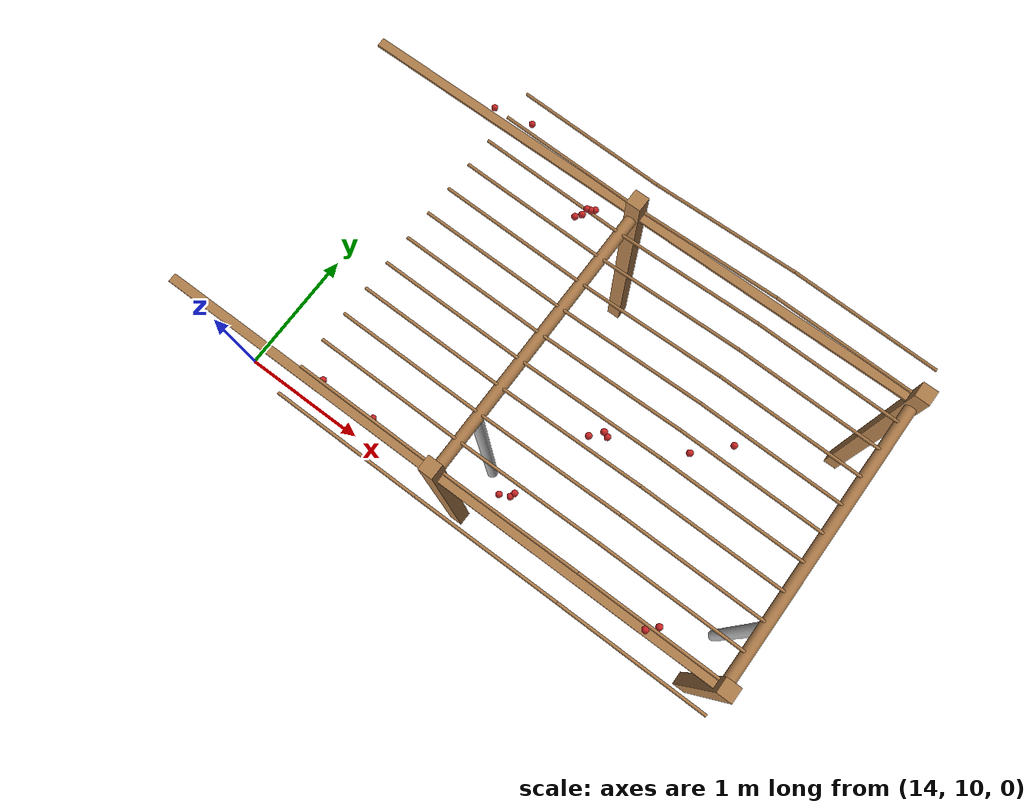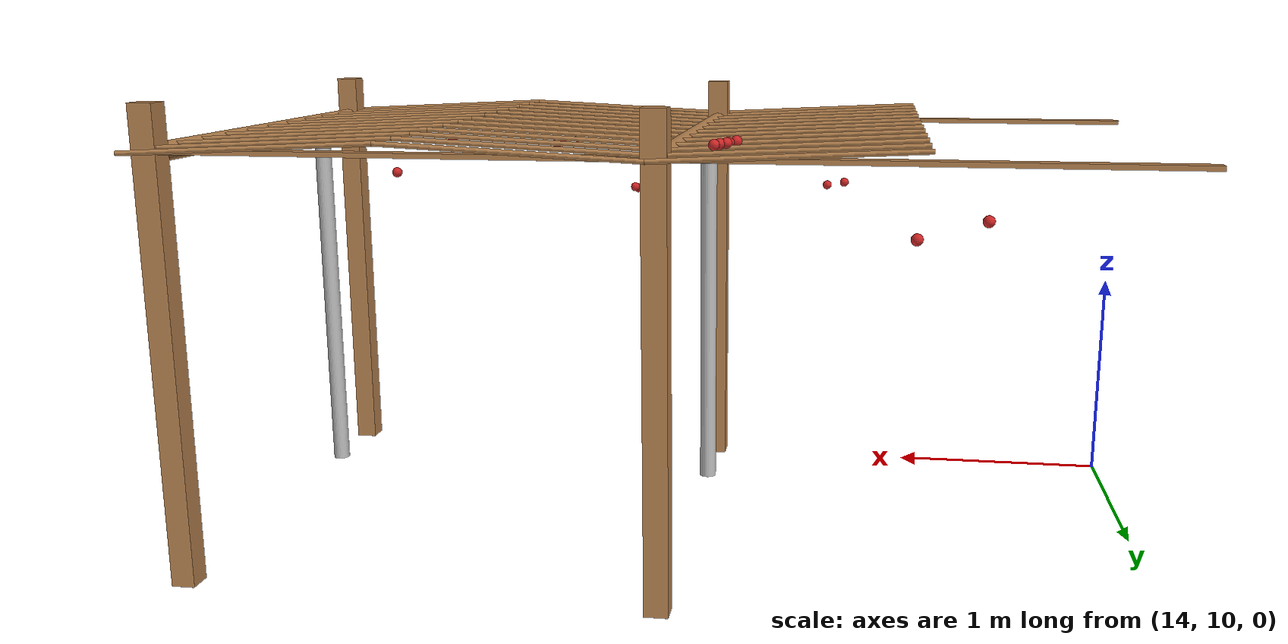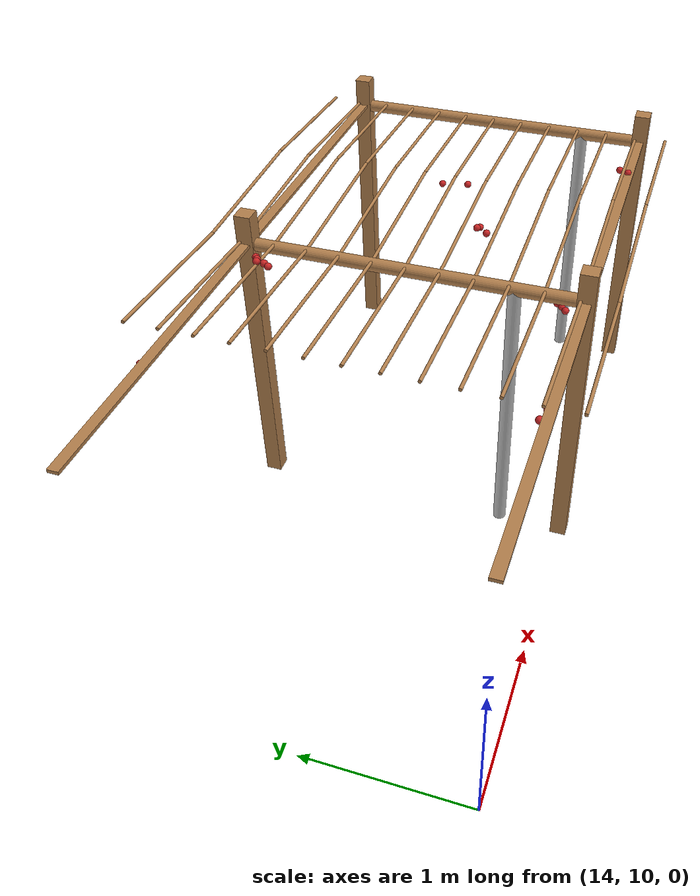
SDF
<sdf version="1.4">
 <model name="pergola">
  <include><name>post_93</name><pose>16.0 10.0 0 0 0 0</pose><uri>model://post</uri></include>
  <include><name>post_94</name><pose>16.0 12.0 0 0 0 0</pose><uri>model://post</uri></include>
  <include><name>post_104</name><pose>18.0 10.0 0 0 0 0</pose><uri>model://post</uri></include>
  <include><name>post_105</name><pose>18.0 12.0 0 0 0 0</pose><uri>model://post</uri></include>
  <link name="beam_82">
   <pose>15.0 10.0 1.81 0 0 0</pose>
   <collision name="collision"><geometry><box><size>2.0 0.06 0.02</size></box></geometry></collision>
   <visual name="visual">
    <geometry><box><size>2.0 0.06 0.02</size></box></geometry>
    <material><script><name>Gazebo/Wood</name></script></material>
   </visual>
   <inertial>
    <mass>5</mass>
    <inertia>
     <ixx>0.0016666666666666668</ixx>
     <ixy>0.0</ixy>
     <ixz>0.0</ixz>
     <iyy>1.6681666666666664</iyy>
     <iyz>0.0</iyz>
     <izz>1.6668333333333332</izz>
    </inertia>
   </inertial>
  </link>
  <link name="beam_83">
   <pose>15.0 12.0 1.81 0 0 0</pose>
   <collision name="collision"><geometry><box><size>2.0 0.06 0.02</size></box></geometry></collision>
   <visual name="visual">
    <geometry><box><size>2.0 0.06 0.02</size></box></geometry>
    <material><script><name>Gazebo/Wood</name></script></material>
   </visual>
   <inertial>
    <mass>5</mass>
    <inertia>
     <ixx>0.0016666666666666668</ixx>
     <ixy>0.0</ixy>
     <ixz>0.0</ixz>
     <iyy>1.6681666666666664</iyy>
     <iyz>0.0</iyz>
     <izz>1.6668333333333332</izz>
    </inertia>
   </inertial>
  </link>
  <link name="beam_93">
   <pose>17.0 10.0 1.81 0 0 0</pose>
   <collision name="collision"><geometry><box><size>2.0 0.06 0.02</size></box></geometry></collision>
   <visual name="visual">
    <geometry><box><size>2.0 0.06 0.02</size></box></geometry>
    <material><script><name>Gazebo/Wood</name></script></material>
   </visual>
   <inertial>
    <mass>5</mass>
    <inertia>
     <ixx>0.0016666666666666668</ixx>
     <ixy>0.0</ixy>
     <ixz>0.0</ixz>
     <iyy>1.6681666666666664</iyy>
     <iyz>0.0</iyz>
     <izz>1.6668333333333332</izz>
    </inertia>
   </inertial>
  </link>
  <link name="beam_94">
   <pose>17.0 12.0 1.81 0 0 0</pose>
   <collision name="collision"><geometry><box><size>2.0 0.06 0.02</size></box></geometry></collision>
   <visual name="visual">
    <geometry><box><size>2.0 0.06 0.02</size></box></geometry>
    <material><script><name>Gazebo/Wood</name></script></material>
   </visual>
   <inertial>
    <mass>5</mass>
    <inertia>
     <ixx>0.0016666666666666668</ixx>
     <ixy>0.0</ixy>
     <ixz>0.0</ixz>
     <iyy>1.6681666666666664</iyy>
     <iyz>0.0</iyz>
     <izz>1.6668333333333332</izz>
    </inertia>
   </inertial>
  </link>
  <include><name>tree_85</name><pose>16.0 10.4 0 0 0 0</pose><uri>model://tree_trunk</uri></include>
  <include><name>tree_95</name><pose>18.0 10.4 0 0 0 0</pose><uri>model://tree_trunk</uri></include>
  <link name="baseBranch_85">
   <pose>16.0 11.0 1.8 1.5707963267948966 0 0</pose>
   <collision name="collision">
    <geometry><cylinder><radius>0.04</radius><length>1.94</length></cylinder></geometry>
   </collision>
   <visual name="visual">
    <geometry><cylinder><radius>0.04</radius><length>1.94</length></cylinder></geometry>
    <material><script><name>Gazebo/WoodFloor</name></script></material>
   </visual>
   <inertial>
    <mass>10</mass>
    <inertia>
     <ixx>3.140333333333333</ixx>
     <ixy>0.0</ixy>
     <ixz>0.0</ixz>
     <iyy>3.140333333333333</iyy>
     <iyz>0.0</iyz>
     <izz>0.008</izz>
    </inertia>
   </inertial>
  </link>
  <link name="baseBranch_95">
   <pose>18.0 11.0 1.8 1.5707963267948966 0 0</pose>
   <collision name="collision">
    <geometry><cylinder><radius>0.04</radius><length>1.94</length></cylinder></geometry>
   </collision>
   <visual name="visual">
    <geometry><cylinder><radius>0.04</radius><length>1.94</length></cylinder></geometry>
    <material><script><name>Gazebo/WoodFloor</name></script></material>
   </visual>
   <inertial>
    <mass>10</mass>
    <inertia>
     <ixx>3.140333333333333</ixx>
     <ixy>0.0</ixy>
     <ixz>0.0</ixz>
     <iyy>3.140333333333333</iyy>
     <iyz>0.0</iyz>
     <izz>0.008</izz>
    </inertia>
   </inertial>
  </link>
  <link name="vine_1499">
   <pose>15.5 9.83 1.85 0 -1.5208379310729538 0</pose>
   <collision name="collision">
    <geometry><cylinder><radius>0.01</radius><length>1.0012492197250393</length></cylinder></geometry>
   </collision>
   <visual name="visual">
    <geometry><cylinder><radius>0.01</radius><length>1.0012492197250393</length></cylinder></geometry>
    <material><script><name>Gazebo/WoodFloor</name></script></material>
   </visual>
   <inertial>
    <mass>5</mass>
    <inertia>
     <ixx>0.41783333333333345</ixx>
     <ixy>0.0</ixy>
     <ixz>0.0</ixz>
     <iyy>0.41783333333333345</iyy>
     <iyz>0.0</iyz>
     <izz>0.00025</izz>
    </inertia>
   </inertial>
  </link>
  <link name="vine_1501">
   <pose>15.5 10.03 1.85 0 -1.5208379310729538 0</pose>
   <collision name="collision">
    <geometry><cylinder><radius>0.01</radius><length>1.0012492197250393</length></cylinder></geometry>
   </collision>
   <visual name="visual">
    <geometry><cylinder><radius>0.01</radius><length>1.0012492197250393</length></cylinder></geometry>
    <material><script><name>Gazebo/WoodFloor</name></script></material>
   </visual>
   <inertial>
    <mass>5</mass>
    <inertia>
     <ixx>0.41783333333333345</ixx>
     <ixy>0.0</ixy>
     <ixz>0.0</ixz>
     <iyy>0.41783333333333345</iyy>
     <iyz>0.0</iyz>
     <izz>0.00025</izz>
    </inertia>
   </inertial>
  </link>
  <link name="vine_1503">
   <pose>15.5 10.23 1.85 0 -1.5208379310729538 0</pose>
   <collision name="collision">
    <geometry><cylinder><radius>0.01</radius><length>1.0012492197250393</length></cylinder></geometry>
   </collision>
   <visual name="visual">
    <geometry><cylinder><radius>0.01</radius><length>1.0012492197250393</length></cylinder></geometry>
    <material><script><name>Gazebo/WoodFloor</name></script></material>
   </visual>
   <inertial>
    <mass>5</mass>
    <inertia>
     <ixx>0.41783333333333345</ixx>
     <ixy>0.0</ixy>
     <ixz>0.0</ixz>
     <iyy>0.41783333333333345</iyy>
     <iyz>0.0</iyz>
     <izz>0.00025</izz>
    </inertia>
   </inertial>
  </link>
  <link name="vine_1505">
   <pose>15.5 10.43 1.85 0 -1.5208379310729538 0</pose>
   <collision name="collision">
    <geometry><cylinder><radius>0.01</radius><length>1.0012492197250393</length></cylinder></geometry>
   </collision>
   <visual name="visual">
    <geometry><cylinder><radius>0.01</radius><length>1.0012492197250393</length></cylinder></geometry>
    <material><script><name>Gazebo/WoodFloor</name></script></material>
   </visual>
   <inertial>
    <mass>5</mass>
    <inertia>
     <ixx>0.41783333333333345</ixx>
     <ixy>0.0</ixy>
     <ixz>0.0</ixz>
     <iyy>0.41783333333333345</iyy>
     <iyz>0.0</iyz>
     <izz>0.00025</izz>
    </inertia>
   </inertial>
  </link>
  <link name="vine_1507">
   <pose>15.5 10.63 1.85 0 -1.5208379310729538 0</pose>
   <collision name="collision">
    <geometry><cylinder><radius>0.01</radius><length>1.0012492197250393</length></cylinder></geometry>
   </collision>
   <visual name="visual">
    <geometry><cylinder><radius>0.01</radius><length>1.0012492197250393</length></cylinder></geometry>
    <material><script><name>Gazebo/WoodFloor</name></script></material>
   </visual>
   <inertial>
    <mass>5</mass>
    <inertia>
     <ixx>0.41783333333333345</ixx>
     <ixy>0.0</ixy>
     <ixz>0.0</ixz>
     <iyy>0.41783333333333345</iyy>
     <iyz>0.0</iyz>
     <izz>0.00025</izz>
    </inertia>
   </inertial>
  </link>
  <link name="vine_1509">
   <pose>15.5 10.83 1.85 0 -1.5208379310729538 0</pose>
   <collision name="collision">
    <geometry><cylinder><radius>0.01</radius><length>1.0012492197250393</length></cylinder></geometry>
   </collision>
   <visual name="visual">
    <geometry><cylinder><radius>0.01</radius><length>1.0012492197250393</length></cylinder></geometry>
    <material><script><name>Gazebo/WoodFloor</name></script></material>
   </visual>
   <inertial>
    <mass>5</mass>
    <inertia>
     <ixx>0.41783333333333345</ixx>
     <ixy>0.0</ixy>
     <ixz>0.0</ixz>
     <iyy>0.41783333333333345</iyy>
     <iyz>0.0</iyz>
     <izz>0.00025</izz>
    </inertia>
   </inertial>
  </link>
  <link name="vine_1511">
   <pose>15.5 11.03 1.85 0 -1.5208379310729538 0</pose>
   <collision name="collision">
    <geometry><cylinder><radius>0.01</radius><length>1.0012492197250393</length></cylinder></geometry>
   </collision>
   <visual name="visual">
    <geometry><cylinder><radius>0.01</radius><length>1.0012492197250393</length></cylinder></geometry>
    <material><script><name>Gazebo/WoodFloor</name></script></material>
   </visual>
   <inertial>
    <mass>5</mass>
    <inertia>
     <ixx>0.41783333333333345</ixx>
     <ixy>0.0</ixy>
     <ixz>0.0</ixz>
     <iyy>0.41783333333333345</iyy>
     <iyz>0.0</iyz>
     <izz>0.00025</izz>
    </inertia>
   </inertial>
  </link>
  <link name="vine_1513">
   <pose>15.5 11.23 1.85 0 -1.5208379310729538 0</pose>
   <collision name="collision">
    <geometry><cylinder><radius>0.01</radius><length>1.0012492197250393</length></cylinder></geometry>
   </collision>
   <visual name="visual">
    <geometry><cylinder><radius>0.01</radius><length>1.0012492197250393</length></cylinder></geometry>
    <material><script><name>Gazebo/WoodFloor</name></script></material>
   </visual>
   <inertial>
    <mass>5</mass>
    <inertia>
     <ixx>0.41783333333333345</ixx>
     <ixy>0.0</ixy>
     <ixz>0.0</ixz>
     <iyy>0.41783333333333345</iyy>
     <iyz>0.0</iyz>
     <izz>0.00025</izz>
    </inertia>
   </inertial>
  </link>
  <link name="vine_1515">
   <pose>15.5 11.43 1.85 0 -1.5208379310729538 0</pose>
   <collision name="collision">
    <geometry><cylinder><radius>0.01</radius><length>1.0012492197250393</length></cylinder></geometry>
   </collision>
   <visual name="visual">
    <geometry><cylinder><radius>0.01</radius><length>1.0012492197250393</length></cylinder></geometry>
    <material><script><name>Gazebo/WoodFloor</name></script></material>
   </visual>
   <inertial>
    <mass>5</mass>
    <inertia>
     <ixx>0.41783333333333345</ixx>
     <ixy>0.0</ixy>
     <ixz>0.0</ixz>
     <iyy>0.41783333333333345</iyy>
     <iyz>0.0</iyz>
     <izz>0.00025</izz>
    </inertia>
   </inertial>
  </link>
  <link name="vine_1517">
   <pose>15.5 11.63 1.85 0 -1.5208379310729538 0</pose>
   <collision name="collision">
    <geometry><cylinder><radius>0.01</radius><length>1.0012492197250393</length></cylinder></geometry>
   </collision>
   <visual name="visual">
    <geometry><cylinder><radius>0.01</radius><length>1.0012492197250393</length></cylinder></geometry>
    <material><script><name>Gazebo/WoodFloor</name></script></material>
   </visual>
   <inertial>
    <mass>5</mass>
    <inertia>
     <ixx>0.41783333333333345</ixx>
     <ixy>0.0</ixy>
     <ixz>0.0</ixz>
     <iyy>0.41783333333333345</iyy>
     <iyz>0.0</iyz>
     <izz>0.00025</izz>
    </inertia>
   </inertial>
  </link>
  <link name="vine_1519">
   <pose>15.5 11.83 1.85 0 -1.5208379310729538 0</pose>
   <collision name="collision">
    <geometry><cylinder><radius>0.01</radius><length>1.0012492197250393</length></cylinder></geometry>
   </collision>
   <visual name="visual">
    <geometry><cylinder><radius>0.01</radius><length>1.0012492197250393</length></cylinder></geometry>
    <material><script><name>Gazebo/WoodFloor</name></script></material>
   </visual>
   <inertial>
    <mass>5</mass>
    <inertia>
     <ixx>0.41783333333333345</ixx>
     <ixy>0.0</ixy>
     <ixz>0.0</ixz>
     <iyy>0.41783333333333345</iyy>
     <iyz>0.0</iyz>
     <izz>0.00025</izz>
    </inertia>
   </inertial>
  </link>
  <link name="vine_1521">
   <pose>15.5 12.03 1.85 0 -1.5208379310729538 0</pose>
   <collision name="collision">
    <geometry><cylinder><radius>0.01</radius><length>1.0012492197250393</length></cylinder></geometry>
   </collision>
   <visual name="visual">
    <geometry><cylinder><radius>0.01</radius><length>1.0012492197250393</length></cylinder></geometry>
    <material><script><name>Gazebo/WoodFloor</name></script></material>
   </visual>
   <inertial>
    <mass>5</mass>
    <inertia>
     <ixx>0.41783333333333345</ixx>
     <ixy>0.0</ixy>
     <ixz>0.0</ixz>
     <iyy>0.41783333333333345</iyy>
     <iyz>0.0</iyz>
     <izz>0.00025</izz>
    </inertia>
   </inertial>
  </link>
  <link name="vine_1523">
   <pose>15.5 12.23 1.85 0 -1.5208379310729538 0</pose>
   <collision name="collision">
    <geometry><cylinder><radius>0.01</radius><length>1.0012492197250393</length></cylinder></geometry>
   </collision>
   <visual name="visual">
    <geometry><cylinder><radius>0.01</radius><length>1.0012492197250393</length></cylinder></geometry>
    <material><script><name>Gazebo/WoodFloor</name></script></material>
   </visual>
   <inertial>
    <mass>5</mass>
    <inertia>
     <ixx>0.41783333333333345</ixx>
     <ixy>0.0</ixy>
     <ixz>0.0</ixz>
     <iyy>0.41783333333333345</iyy>
     <iyz>0.0</iyz>
     <izz>0.00025</izz>
    </inertia>
   </inertial>
  </link>
  <link name="vine_1698">
   <pose>16.5 9.83 1.85 0 1.5208379310729538 0</pose>
   <collision name="collision">
    <geometry><cylinder><radius>0.01</radius><length>1.0012492197250393</length></cylinder></geometry>
   </collision>
   <visual name="visual">
    <geometry><cylinder><radius>0.01</radius><length>1.0012492197250393</length></cylinder></geometry>
    <material><script><name>Gazebo/WoodFloor</name></script></material>
   </visual>
   <inertial>
    <mass>5</mass>
    <inertia>
     <ixx>0.41783333333333345</ixx>
     <ixy>0.0</ixy>
     <ixz>0.0</ixz>
     <iyy>0.41783333333333345</iyy>
     <iyz>0.0</iyz>
     <izz>0.00025</izz>
    </inertia>
   </inertial>
  </link>
  <link name="vine_1699">
   <pose>17.5 9.83 1.85 0 -1.5208379310729538 0</pose>
   <collision name="collision">
    <geometry><cylinder><radius>0.01</radius><length>1.0012492197250393</length></cylinder></geometry>
   </collision>
   <visual name="visual">
    <geometry><cylinder><radius>0.01</radius><length>1.0012492197250393</length></cylinder></geometry>
    <material><script><name>Gazebo/WoodFloor</name></script></material>
   </visual>
   <inertial>
    <mass>5</mass>
    <inertia>
     <ixx>0.41783333333333345</ixx>
     <ixy>0.0</ixy>
     <ixz>0.0</ixz>
     <iyy>0.41783333333333345</iyy>
     <iyz>0.0</iyz>
     <izz>0.00025</izz>
    </inertia>
   </inertial>
  </link>
  <link name="vine_1700">
   <pose>16.5 10.03 1.85 0 1.5208379310729538 0</pose>
   <collision name="collision">
    <geometry><cylinder><radius>0.01</radius><length>1.0012492197250393</length></cylinder></geometry>
   </collision>
   <visual name="visual">
    <geometry><cylinder><radius>0.01</radius><length>1.0012492197250393</length></cylinder></geometry>
    <material><script><name>Gazebo/WoodFloor</name></script></material>
   </visual>
   <inertial>
    <mass>5</mass>
    <inertia>
     <ixx>0.41783333333333345</ixx>
     <ixy>0.0</ixy>
     <ixz>0.0</ixz>
     <iyy>0.41783333333333345</iyy>
     <iyz>0.0</iyz>
     <izz>0.00025</izz>
    </inertia>
   </inertial>
  </link>
  <link name="vine_1701">
   <pose>17.5 10.03 1.85 0 -1.5208379310729538 0</pose>
   <collision name="collision">
    <geometry><cylinder><radius>0.01</radius><length>1.0012492197250393</length></cylinder></geometry>
   </collision>
   <visual name="visual">
    <geometry><cylinder><radius>0.01</radius><length>1.0012492197250393</length></cylinder></geometry>
    <material><script><name>Gazebo/WoodFloor</name></script></material>
   </visual>
   <inertial>
    <mass>5</mass>
    <inertia>
     <ixx>0.41783333333333345</ixx>
     <ixy>0.0</ixy>
     <ixz>0.0</ixz>
     <iyy>0.41783333333333345</iyy>
     <iyz>0.0</iyz>
     <izz>0.00025</izz>
    </inertia>
   </inertial>
  </link>
  <link name="vine_1702">
   <pose>16.5 10.23 1.85 0 1.5208379310729538 0</pose>
   <collision name="collision">
    <geometry><cylinder><radius>0.01</radius><length>1.0012492197250393</length></cylinder></geometry>
   </collision>
   <visual name="visual">
    <geometry><cylinder><radius>0.01</radius><length>1.0012492197250393</length></cylinder></geometry>
    <material><script><name>Gazebo/WoodFloor</name></script></material>
   </visual>
   <inertial>
    <mass>5</mass>
    <inertia>
     <ixx>0.41783333333333345</ixx>
     <ixy>0.0</ixy>
     <ixz>0.0</ixz>
     <iyy>0.41783333333333345</iyy>
     <iyz>0.0</iyz>
     <izz>0.00025</izz>
    </inertia>
   </inertial>
  </link>
  <link name="vine_1703">
   <pose>17.5 10.23 1.85 0 -1.5208379310729538 0</pose>
   <collision name="collision">
    <geometry><cylinder><radius>0.01</radius><length>1.0012492197250393</length></cylinder></geometry>
   </collision>
   <visual name="visual">
    <geometry><cylinder><radius>0.01</radius><length>1.0012492197250393</length></cylinder></geometry>
    <material><script><name>Gazebo/WoodFloor</name></script></material>
   </visual>
   <inertial>
    <mass>5</mass>
    <inertia>
     <ixx>0.41783333333333345</ixx>
     <ixy>0.0</ixy>
     <ixz>0.0</ixz>
     <iyy>0.41783333333333345</iyy>
     <iyz>0.0</iyz>
     <izz>0.00025</izz>
    </inertia>
   </inertial>
  </link>
  <link name="vine_1704">
   <pose>16.5 10.43 1.85 0 1.5208379310729538 0</pose>
   <collision name="collision">
    <geometry><cylinder><radius>0.01</radius><length>1.0012492197250393</length></cylinder></geometry>
   </collision>
   <visual name="visual">
    <geometry><cylinder><radius>0.01</radius><length>1.0012492197250393</length></cylinder></geometry>
    <material><script><name>Gazebo/WoodFloor</name></script></material>
   </visual>
   <inertial>
    <mass>5</mass>
    <inertia>
     <ixx>0.41783333333333345</ixx>
     <ixy>0.0</ixy>
     <ixz>0.0</ixz>
     <iyy>0.41783333333333345</iyy>
     <iyz>0.0</iyz>
     <izz>0.00025</izz>
    </inertia>
   </inertial>
  </link>
  <link name="vine_1705">
   <pose>17.5 10.43 1.85 0 -1.5208379310729538 0</pose>
   <collision name="collision">
    <geometry><cylinder><radius>0.01</radius><length>1.0012492197250393</length></cylinder></geometry>
   </collision>
   <visual name="visual">
    <geometry><cylinder><radius>0.01</radius><length>1.0012492197250393</length></cylinder></geometry>
    <material><script><name>Gazebo/WoodFloor</name></script></material>
   </visual>
   <inertial>
    <mass>5</mass>
    <inertia>
     <ixx>0.41783333333333345</ixx>
     <ixy>0.0</ixy>
     <ixz>0.0</ixz>
     <iyy>0.41783333333333345</iyy>
     <iyz>0.0</iyz>
     <izz>0.00025</izz>
    </inertia>
   </inertial>
  </link>
  <link name="vine_1706">
   <pose>16.5 10.63 1.85 0 1.5208379310729538 0</pose>
   <collision name="collision">
    <geometry><cylinder><radius>0.01</radius><length>1.0012492197250393</length></cylinder></geometry>
   </collision>
   <visual name="visual">
    <geometry><cylinder><radius>0.01</radius><length>1.0012492197250393</length></cylinder></geometry>
    <material><script><name>Gazebo/WoodFloor</name></script></material>
   </visual>
   <inertial>
    <mass>5</mass>
    <inertia>
     <ixx>0.41783333333333345</ixx>
     <ixy>0.0</ixy>
     <ixz>0.0</ixz>
     <iyy>0.41783333333333345</iyy>
     <iyz>0.0</iyz>
     <izz>0.00025</izz>
    </inertia>
   </inertial>
  </link>
  <link name="vine_1707">
   <pose>17.5 10.63 1.85 0 -1.5208379310729538 0</pose>
   <collision name="collision">
    <geometry><cylinder><radius>0.01</radius><length>1.0012492197250393</length></cylinder></geometry>
   </collision>
   <visual name="visual">
    <geometry><cylinder><radius>0.01</radius><length>1.0012492197250393</length></cylinder></geometry>
    <material><script><name>Gazebo/WoodFloor</name></script></material>
   </visual>
   <inertial>
    <mass>5</mass>
    <inertia>
     <ixx>0.41783333333333345</ixx>
     <ixy>0.0</ixy>
     <ixz>0.0</ixz>
     <iyy>0.41783333333333345</iyy>
     <iyz>0.0</iyz>
     <izz>0.00025</izz>
    </inertia>
   </inertial>
  </link>
  <link name="vine_1708">
   <pose>16.5 10.83 1.85 0 1.5208379310729538 0</pose>
   <collision name="collision">
    <geometry><cylinder><radius>0.01</radius><length>1.0012492197250393</length></cylinder></geometry>
   </collision>
   <visual name="visual">
    <geometry><cylinder><radius>0.01</radius><length>1.0012492197250393</length></cylinder></geometry>
    <material><script><name>Gazebo/WoodFloor</name></script></material>
   </visual>
   <inertial>
    <mass>5</mass>
    <inertia>
     <ixx>0.41783333333333345</ixx>
     <ixy>0.0</ixy>
     <ixz>0.0</ixz>
     <iyy>0.41783333333333345</iyy>
     <iyz>0.0</iyz>
     <izz>0.00025</izz>
    </inertia>
   </inertial>
  </link>
  <link name="vine_1709">
   <pose>17.5 10.83 1.85 0 -1.5208379310729538 0</pose>
   <collision name="collision">
    <geometry><cylinder><radius>0.01</radius><length>1.0012492197250393</length></cylinder></geometry>
   </collision>
   <visual name="visual">
    <geometry><cylinder><radius>0.01</radius><length>1.0012492197250393</length></cylinder></geometry>
    <material><script><name>Gazebo/WoodFloor</name></script></material>
   </visual>
   <inertial>
    <mass>5</mass>
    <inertia>
     <ixx>0.41783333333333345</ixx>
     <ixy>0.0</ixy>
     <ixz>0.0</ixz>
     <iyy>0.41783333333333345</iyy>
     <iyz>0.0</iyz>
     <izz>0.00025</izz>
    </inertia>
   </inertial>
  </link>
  <link name="vine_1710">
   <pose>16.5 11.03 1.85 0 1.5208379310729538 0</pose>
   <collision name="collision">
    <geometry><cylinder><radius>0.01</radius><length>1.0012492197250393</length></cylinder></geometry>
   </collision>
   <visual name="visual">
    <geometry><cylinder><radius>0.01</radius><length>1.0012492197250393</length></cylinder></geometry>
    <material><script><name>Gazebo/WoodFloor</name></script></material>
   </visual>
   <inertial>
    <mass>5</mass>
    <inertia>
     <ixx>0.41783333333333345</ixx>
     <ixy>0.0</ixy>
     <ixz>0.0</ixz>
     <iyy>0.41783333333333345</iyy>
     <iyz>0.0</iyz>
     <izz>0.00025</izz>
    </inertia>
   </inertial>
  </link>
  <link name="vine_1711">
   <pose>17.5 11.03 1.85 0 -1.5208379310729538 0</pose>
   <collision name="collision">
    <geometry><cylinder><radius>0.01</radius><length>1.0012492197250393</length></cylinder></geometry>
   </collision>
   <visual name="visual">
    <geometry><cylinder><radius>0.01</radius><length>1.0012492197250393</length></cylinder></geometry>
    <material><script><name>Gazebo/WoodFloor</name></script></material>
   </visual>
   <inertial>
    <mass>5</mass>
    <inertia>
     <ixx>0.41783333333333345</ixx>
     <ixy>0.0</ixy>
     <ixz>0.0</ixz>
     <iyy>0.41783333333333345</iyy>
     <iyz>0.0</iyz>
     <izz>0.00025</izz>
    </inertia>
   </inertial>
  </link>
  <link name="vine_1712">
   <pose>16.5 11.23 1.85 0 1.5208379310729538 0</pose>
   <collision name="collision">
    <geometry><cylinder><radius>0.01</radius><length>1.0012492197250393</length></cylinder></geometry>
   </collision>
   <visual name="visual">
    <geometry><cylinder><radius>0.01</radius><length>1.0012492197250393</length></cylinder></geometry>
    <material><script><name>Gazebo/WoodFloor</name></script></material>
   </visual>
   <inertial>
    <mass>5</mass>
    <inertia>
     <ixx>0.41783333333333345</ixx>
     <ixy>0.0</ixy>
     <ixz>0.0</ixz>
     <iyy>0.41783333333333345</iyy>
     <iyz>0.0</iyz>
     <izz>0.00025</izz>
    </inertia>
   </inertial>
  </link>
  <link name="vine_1713">
   <pose>17.5 11.23 1.85 0 -1.5208379310729538 0</pose>
   <collision name="collision">
    <geometry><cylinder><radius>0.01</radius><length>1.0012492197250393</length></cylinder></geometry>
   </collision>
   <visual name="visual">
    <geometry><cylinder><radius>0.01</radius><length>1.0012492197250393</length></cylinder></geometry>
    <material><script><name>Gazebo/WoodFloor</name></script></material>
   </visual>
   <inertial>
    <mass>5</mass>
    <inertia>
     <ixx>0.41783333333333345</ixx>
     <ixy>0.0</ixy>
     <ixz>0.0</ixz>
     <iyy>0.41783333333333345</iyy>
     <iyz>0.0</iyz>
     <izz>0.00025</izz>
    </inertia>
   </inertial>
  </link>
  <link name="vine_1714">
   <pose>16.5 11.43 1.85 0 1.5208379310729538 0</pose>
   <collision name="collision">
    <geometry><cylinder><radius>0.01</radius><length>1.0012492197250393</length></cylinder></geometry>
   </collision>
   <visual name="visual">
    <geometry><cylinder><radius>0.01</radius><length>1.0012492197250393</length></cylinder></geometry>
    <material><script><name>Gazebo/WoodFloor</name></script></material>
   </visual>
   <inertial>
    <mass>5</mass>
    <inertia>
     <ixx>0.41783333333333345</ixx>
     <ixy>0.0</ixy>
     <ixz>0.0</ixz>
     <iyy>0.41783333333333345</iyy>
     <iyz>0.0</iyz>
     <izz>0.00025</izz>
    </inertia>
   </inertial>
  </link>
  <link name="vine_1715">
   <pose>17.5 11.43 1.85 0 -1.5208379310729538 0</pose>
   <collision name="collision">
    <geometry><cylinder><radius>0.01</radius><length>1.0012492197250393</length></cylinder></geometry>
   </collision>
   <visual name="visual">
    <geometry><cylinder><radius>0.01</radius><length>1.0012492197250393</length></cylinder></geometry>
    <material><script><name>Gazebo/WoodFloor</name></script></material>
   </visual>
   <inertial>
    <mass>5</mass>
    <inertia>
     <ixx>0.41783333333333345</ixx>
     <ixy>0.0</ixy>
     <ixz>0.0</ixz>
     <iyy>0.41783333333333345</iyy>
     <iyz>0.0</iyz>
     <izz>0.00025</izz>
    </inertia>
   </inertial>
  </link>
  <link name="vine_1716">
   <pose>16.5 11.63 1.85 0 1.5208379310729538 0</pose>
   <collision name="collision">
    <geometry><cylinder><radius>0.01</radius><length>1.0012492197250393</length></cylinder></geometry>
   </collision>
   <visual name="visual">
    <geometry><cylinder><radius>0.01</radius><length>1.0012492197250393</length></cylinder></geometry>
    <material><script><name>Gazebo/WoodFloor</name></script></material>
   </visual>
   <inertial>
    <mass>5</mass>
    <inertia>
     <ixx>0.41783333333333345</ixx>
     <ixy>0.0</ixy>
     <ixz>0.0</ixz>
     <iyy>0.41783333333333345</iyy>
     <iyz>0.0</iyz>
     <izz>0.00025</izz>
    </inertia>
   </inertial>
  </link>
  <link name="vine_1717">
   <pose>17.5 11.63 1.85 0 -1.5208379310729538 0</pose>
   <collision name="collision">
    <geometry><cylinder><radius>0.01</radius><length>1.0012492197250393</length></cylinder></geometry>
   </collision>
   <visual name="visual">
    <geometry><cylinder><radius>0.01</radius><length>1.0012492197250393</length></cylinder></geometry>
    <material><script><name>Gazebo/WoodFloor</name></script></material>
   </visual>
   <inertial>
    <mass>5</mass>
    <inertia>
     <ixx>0.41783333333333345</ixx>
     <ixy>0.0</ixy>
     <ixz>0.0</ixz>
     <iyy>0.41783333333333345</iyy>
     <iyz>0.0</iyz>
     <izz>0.00025</izz>
    </inertia>
   </inertial>
  </link>
  <link name="vine_1718">
   <pose>16.5 11.83 1.85 0 1.5208379310729538 0</pose>
   <collision name="collision">
    <geometry><cylinder><radius>0.01</radius><length>1.0012492197250393</length></cylinder></geometry>
   </collision>
   <visual name="visual">
    <geometry><cylinder><radius>0.01</radius><length>1.0012492197250393</length></cylinder></geometry>
    <material><script><name>Gazebo/WoodFloor</name></script></material>
   </visual>
   <inertial>
    <mass>5</mass>
    <inertia>
     <ixx>0.41783333333333345</ixx>
     <ixy>0.0</ixy>
     <ixz>0.0</ixz>
     <iyy>0.41783333333333345</iyy>
     <iyz>0.0</iyz>
     <izz>0.00025</izz>
    </inertia>
   </inertial>
  </link>
  <link name="vine_1719">
   <pose>17.5 11.83 1.85 0 -1.5208379310729538 0</pose>
   <collision name="collision">
    <geometry><cylinder><radius>0.01</radius><length>1.0012492197250393</length></cylinder></geometry>
   </collision>
   <visual name="visual">
    <geometry><cylinder><radius>0.01</radius><length>1.0012492197250393</length></cylinder></geometry>
    <material><script><name>Gazebo/WoodFloor</name></script></material>
   </visual>
   <inertial>
    <mass>5</mass>
    <inertia>
     <ixx>0.41783333333333345</ixx>
     <ixy>0.0</ixy>
     <ixz>0.0</ixz>
     <iyy>0.41783333333333345</iyy>
     <iyz>0.0</iyz>
     <izz>0.00025</izz>
    </inertia>
   </inertial>
  </link>
  <link name="vine_1720">
   <pose>16.5 12.03 1.85 0 1.5208379310729538 0</pose>
   <collision name="collision">
    <geometry><cylinder><radius>0.01</radius><length>1.0012492197250393</length></cylinder></geometry>
   </collision>
   <visual name="visual">
    <geometry><cylinder><radius>0.01</radius><length>1.0012492197250393</length></cylinder></geometry>
    <material><script><name>Gazebo/WoodFloor</name></script></material>
   </visual>
   <inertial>
    <mass>5</mass>
    <inertia>
     <ixx>0.41783333333333345</ixx>
     <ixy>0.0</ixy>
     <ixz>0.0</ixz>
     <iyy>0.41783333333333345</iyy>
     <iyz>0.0</iyz>
     <izz>0.00025</izz>
    </inertia>
   </inertial>
  </link>
  <link name="vine_1721">
   <pose>17.5 12.03 1.85 0 -1.5208379310729538 0</pose>
   <collision name="collision">
    <geometry><cylinder><radius>0.01</radius><length>1.0012492197250393</length></cylinder></geometry>
   </collision>
   <visual name="visual">
    <geometry><cylinder><radius>0.01</radius><length>1.0012492197250393</length></cylinder></geometry>
    <material><script><name>Gazebo/WoodFloor</name></script></material>
   </visual>
   <inertial>
    <mass>5</mass>
    <inertia>
     <ixx>0.41783333333333345</ixx>
     <ixy>0.0</ixy>
     <ixz>0.0</ixz>
     <iyy>0.41783333333333345</iyy>
     <iyz>0.0</iyz>
     <izz>0.00025</izz>
    </inertia>
   </inertial>
  </link>
  <link name="vine_1722">
   <pose>16.5 12.23 1.85 0 1.5208379310729538 0</pose>
   <collision name="collision">
    <geometry><cylinder><radius>0.01</radius><length>1.0012492197250393</length></cylinder></geometry>
   </collision>
   <visual name="visual">
    <geometry><cylinder><radius>0.01</radius><length>1.0012492197250393</length></cylinder></geometry>
    <material><script><name>Gazebo/WoodFloor</name></script></material>
   </visual>
   <inertial>
    <mass>5</mass>
    <inertia>
     <ixx>0.41783333333333345</ixx>
     <ixy>0.0</ixy>
     <ixz>0.0</ixz>
     <iyy>0.41783333333333345</iyy>
     <iyz>0.0</iyz>
     <izz>0.00025</izz>
    </inertia>
   </inertial>
  </link>
  <link name="vine_1723">
   <pose>17.5 12.23 1.85 0 -1.5208379310729538 0</pose>
   <collision name="collision">
    <geometry><cylinder><radius>0.01</radius><length>1.0012492197250393</length></cylinder></geometry>
   </collision>
   <visual name="visual">
    <geometry><cylinder><radius>0.01</radius><length>1.0012492197250393</length></cylinder></geometry>
    <material><script><name>Gazebo/WoodFloor</name></script></material>
   </visual>
   <inertial>
    <mass>5</mass>
    <inertia>
     <ixx>0.41783333333333345</ixx>
     <ixy>0.0</ixy>
     <ixz>0.0</ixz>
     <iyy>0.41783333333333345</iyy>
     <iyz>0.0</iyz>
     <izz>0.00025</izz>
    </inertia>
   </inertial>
  </link>
  <link name="fruit_1">
   <pose>15.34216868290137 10.041218060468374 1.4921049058217701 0 0 0</pose>
   <collision name="fruit_collision_1"><geometry><sphere><radius>0.022</radius></sphere></geometry></collision>
   <visual name="visual">
    <geometry><sphere><radius>0.022</radius></sphere></geometry>
    <material><script><name>Gazebo/Red</name></script></material>
   </visual>
   <inertial>
    <mass>0.05</mass>
    <inertia>
     <ixx>9.679999999999999e-06</ixx>
     <ixy>0.0</ixy>
     <ixz>0.0</ixz>
     <iyy>9.679999999999999e-06</iyy>
     <iyz>0.0</iyz>
     <izz>9.679999999999999e-06</izz>
    </inertia>
   </inertial>
   <sensor name="fruit_contact_1" type="contact">
    <contact><collision>fruit_collision_1</collision></contact>
   </sensor>
  </link>
  <link name="fruit_40">
   <pose>15.726250835826075 11.746685461181473 1.855435675482733 0 0 0</pose>
   <collision name="fruit_collision_40"><geometry><sphere><radius>0.022</radius></sphere></geometry></collision>
   <visual name="visual">
    <geometry><sphere><radius>0.022</radius></sphere></geometry>
    <material><script><name>Gazebo/Red</name></script></material>
   </visual>
   <inertial>
    <mass>0.05</mass>
    <inertia>
     <ixx>9.679999999999999e-06</ixx>
     <ixy>0.0</ixy>
     <ixz>0.0</ixz>
     <iyy>9.679999999999999e-06</iyy>
     <iyz>0.0</iyz>
     <izz>9.679999999999999e-06</izz>
    </inertia>
   </inertial>
   <sensor name="fruit_contact_40" type="contact">
    <contact><collision>fruit_collision_40</collision></contact>
   </sensor>
  </link>
  <link name="fruit_52">
   <pose>16.33183738836038 10.155497682374172 1.480032265575146 0 0 0</pose>
   <collision name="fruit_collision_52"><geometry><sphere><radius>0.022</radius></sphere></geometry></collision>
   <visual name="visual">
    <geometry><sphere><radius>0.022</radius></sphere></geometry>
    <material><script><name>Gazebo/Red</name></script></material>
   </visual>
   <inertial>
    <mass>0.05</mass>
    <inertia>
     <ixx>9.679999999999999e-06</ixx>
     <ixy>0.0</ixy>
     <ixz>0.0</ixz>
     <iyy>9.679999999999999e-06</iyy>
     <iyz>0.0</iyz>
     <izz>9.679999999999999e-06</izz>
    </inertia>
   </inertial>
   <sensor name="fruit_contact_52" type="contact">
    <contact><collision>fruit_collision_52</collision></contact>
   </sensor>
  </link>
  <link name="fruit_105">
   <pose>17.30079201324187 11.199652992192773 1.645815315660098 0 0 0</pose>
   <collision name="fruit_collision_105"><geometry><sphere><radius>0.022</radius></sphere></geometry></collision>
   <visual name="visual">
    <geometry><sphere><radius>0.022</radius></sphere></geometry>
    <material><script><name>Gazebo/Red</name></script></material>
   </visual>
   <inertial>
    <mass>0.05</mass>
    <inertia>
     <ixx>9.679999999999999e-06</ixx>
     <ixy>0.0</ixy>
     <ixz>0.0</ixz>
     <iyy>9.679999999999999e-06</iyy>
     <iyz>0.0</iyz>
     <izz>9.679999999999999e-06</izz>
    </inertia>
   </inertial>
   <sensor name="fruit_contact_105" type="contact">
    <contact><collision>fruit_collision_105</collision></contact>
   </sensor>
  </link>
  <link name="fruit_243">
   <pose>16.58251262280647 10.711882952073791 1.7629631136905781 0 0 0</pose>
   <collision name="fruit_collision_243"><geometry><sphere><radius>0.022</radius></sphere></geometry></collision>
   <visual name="visual">
    <geometry><sphere><radius>0.022</radius></sphere></geometry>
    <material><script><name>Gazebo/Red</name></script></material>
   </visual>
   <inertial>
    <mass>0.05</mass>
    <inertia>
     <ixx>9.679999999999999e-06</ixx>
     <ixy>0.0</ixy>
     <ixz>0.0</ixz>
     <iyy>9.679999999999999e-06</iyy>
     <iyz>0.0</iyz>
     <izz>9.679999999999999e-06</izz>
    </inertia>
   </inertial>
   <sensor name="fruit_contact_243" type="contact">
    <contact><collision>fruit_collision_243</collision></contact>
   </sensor>
  </link>
  <link name="fruit_260">
   <pose>15.100834486222059 10.057058647916081 1.6979687296351849 0 0 0</pose>
   <collision name="fruit_collision_260"><geometry><sphere><radius>0.022</radius></sphere></geometry></collision>
   <visual name="visual">
    <geometry><sphere><radius>0.022</radius></sphere></geometry>
    <material><script><name>Gazebo/Red</name></script></material>
   </visual>
   <inertial>
    <mass>0.05</mass>
    <inertia>
     <ixx>9.679999999999999e-06</ixx>
     <ixy>0.0</ixy>
     <ixz>0.0</ixz>
     <iyy>9.679999999999999e-06</iyy>
     <iyz>0.0</iyz>
     <izz>9.679999999999999e-06</izz>
    </inertia>
   </inertial>
   <sensor name="fruit_contact_260" type="contact">
    <contact><collision>fruit_collision_260</collision></contact>
   </sensor>
  </link>
  <link name="fruit_273">
   <pose>17.47599628142306 10.004343129578105 1.8262703463425576 0 0 0</pose>
   <collision name="fruit_collision_273"><geometry><sphere><radius>0.022</radius></sphere></geometry></collision>
   <visual name="visual">
    <geometry><sphere><radius>0.022</radius></sphere></geometry>
    <material><script><name>Gazebo/Red</name></script></material>
   </visual>
   <inertial>
    <mass>0.05</mass>
    <inertia>
     <ixx>9.679999999999999e-06</ixx>
     <ixy>0.0</ixy>
     <ixz>0.0</ixz>
     <iyy>9.679999999999999e-06</iyy>
     <iyz>0.0</iyz>
     <izz>9.679999999999999e-06</izz>
    </inertia>
   </inertial>
   <sensor name="fruit_contact_273" type="contact">
    <contact><collision>fruit_collision_273</collision></contact>
   </sensor>
  </link>
  <link name="fruit_313">
   <pose>17.11461007517358 10.976229488854829 1.7724999280740983 0 0 0</pose>
   <collision name="fruit_collision_313"><geometry><sphere><radius>0.022</radius></sphere></geometry></collision>
   <visual name="visual">
    <geometry><sphere><radius>0.022</radius></sphere></geometry>
    <material><script><name>Gazebo/Red</name></script></material>
   </visual>
   <inertial>
    <mass>0.05</mass>
    <inertia>
     <ixx>9.679999999999999e-06</ixx>
     <ixy>0.0</ixy>
     <ixz>0.0</ixz>
     <iyy>9.679999999999999e-06</iyy>
     <iyz>0.0</iyz>
     <izz>9.679999999999999e-06</izz>
    </inertia>
   </inertial>
   <sensor name="fruit_contact_313" type="contact">
    <contact><collision>fruit_collision_313</collision></contact>
   </sensor>
  </link>
  <link name="fruit_322">
   <pose>15.04709965955408 12.21563194710798 1.5683236019567848 0 0 0</pose>
   <collision name="fruit_collision_322"><geometry><sphere><radius>0.022</radius></sphere></geometry></collision>
   <visual name="visual">
    <geometry><sphere><radius>0.022</radius></sphere></geometry>
    <material><script><name>Gazebo/Red</name></script></material>
   </visual>
   <inertial>
    <mass>0.05</mass>
    <inertia>
     <ixx>9.679999999999999e-06</ixx>
     <ixy>0.0</ixy>
     <ixz>0.0</ixz>
     <iyy>9.679999999999999e-06</iyy>
     <iyz>0.0</iyz>
     <izz>9.679999999999999e-06</izz>
    </inertia>
   </inertial>
   <sensor name="fruit_contact_322" type="contact">
    <contact><collision>fruit_collision_322</collision></contact>
   </sensor>
  </link>
  <link name="fruit_437">
   <pose>15.80022992446649 11.855430172426331 1.8507724681874613 0 0 0</pose>
   <collision name="fruit_collision_437"><geometry><sphere><radius>0.022</radius></sphere></geometry></collision>
   <visual name="visual">
    <geometry><sphere><radius>0.022</radius></sphere></geometry>
    <material><script><name>Gazebo/Red</name></script></material>
   </visual>
   <inertial>
    <mass>0.05</mass>
    <inertia>
     <ixx>9.679999999999999e-06</ixx>
     <ixy>0.0</ixy>
     <ixz>0.0</ixz>
     <iyy>9.679999999999999e-06</iyy>
     <iyz>0.0</iyz>
     <izz>9.679999999999999e-06</izz>
    </inertia>
   </inertial>
   <sensor name="fruit_contact_437" type="contact">
    <contact><collision>fruit_collision_437</collision></contact>
   </sensor>
  </link>
  <link name="fruit_523">
   <pose>16.640402905457616 10.786618606233102 1.75342550270184 0 0 0</pose>
   <collision name="fruit_collision_523"><geometry><sphere><radius>0.022</radius></sphere></geometry></collision>
   <visual name="visual">
    <geometry><sphere><radius>0.022</radius></sphere></geometry>
    <material><script><name>Gazebo/Red</name></script></material>
   </visual>
   <inertial>
    <mass>0.05</mass>
    <inertia>
     <ixx>9.679999999999999e-06</ixx>
     <ixy>0.0</ixy>
     <ixz>0.0</ixz>
     <iyy>9.679999999999999e-06</iyy>
     <iyz>0.0</iyz>
     <izz>9.679999999999999e-06</izz>
    </inertia>
   </inertial>
   <sensor name="fruit_contact_523" type="contact">
    <contact><collision>fruit_collision_523</collision></contact>
   </sensor>
  </link>
  <link name="fruit_528">
   <pose>16.39288525852008 10.187053863924998 1.4626500348346025 0 0 0</pose>
   <collision name="fruit_collision_528"><geometry><sphere><radius>0.022</radius></sphere></geometry></collision>
   <visual name="visual">
    <geometry><sphere><radius>0.022</radius></sphere></geometry>
    <material><script><name>Gazebo/Red</name></script></material>
   </visual>
   <inertial>
    <mass>0.05</mass>
    <inertia>
     <ixx>9.679999999999999e-06</ixx>
     <ixy>0.0</ixy>
     <ixz>0.0</ixz>
     <iyy>9.679999999999999e-06</iyy>
     <iyz>0.0</iyz>
     <izz>9.679999999999999e-06</izz>
    </inertia>
   </inertial>
   <sensor name="fruit_contact_528" type="contact">
    <contact><collision>fruit_collision_528</collision></contact>
   </sensor>
  </link>
  <link name="fruit_720">
   <pose>15.752644904844392 11.783453256711603 1.853095613884683 0 0 0</pose>
   <collision name="fruit_collision_720"><geometry><sphere><radius>0.022</radius></sphere></geometry></collision>
   <visual name="visual">
    <geometry><sphere><radius>0.022</radius></sphere></geometry>
    <material><script><name>Gazebo/Red</name></script></material>
   </visual>
   <inertial>
    <mass>0.05</mass>
    <inertia>
     <ixx>9.679999999999999e-06</ixx>
     <ixy>0.0</ixy>
     <ixz>0.0</ixz>
     <iyy>9.679999999999999e-06</iyy>
     <iyz>0.0</iyz>
     <izz>9.679999999999999e-06</izz>
    </inertia>
   </inertial>
   <sensor name="fruit_contact_720" type="contact">
    <contact><collision>fruit_collision_720</collision></contact>
   </sensor>
  </link>
  <link name="fruit_737">
   <pose>16.40384852880531 10.216877284939294 1.4720084154128332 0 0 0</pose>
   <collision name="fruit_collision_737"><geometry><sphere><radius>0.022</radius></sphere></geometry></collision>
   <visual name="visual">
    <geometry><sphere><radius>0.022</radius></sphere></geometry>
    <material><script><name>Gazebo/Red</name></script></material>
   </visual>
   <inertial>
    <mass>0.05</mass>
    <inertia>
     <ixx>9.679999999999999e-06</ixx>
     <ixy>0.0</ixy>
     <ixz>0.0</ixz>
     <iyy>9.679999999999999e-06</iyy>
     <iyz>0.0</iyz>
     <izz>9.679999999999999e-06</izz>
    </inertia>
   </inertial>
   <sensor name="fruit_contact_737" type="contact">
    <contact><collision>fruit_collision_737</collision></contact>
   </sensor>
  </link>
  <link name="fruit_759">
   <pose>17.53172349826233 10.06254210836381 1.8087562584005628 0 0 0</pose>
   <collision name="fruit_collision_759"><geometry><sphere><radius>0.022</radius></sphere></geometry></collision>
   <visual name="visual">
    <geometry><sphere><radius>0.022</radius></sphere></geometry>
    <material><script><name>Gazebo/Red</name></script></material>
   </visual>
   <inertial>
    <mass>0.05</mass>
    <inertia>
     <ixx>9.679999999999999e-06</ixx>
     <ixy>0.0</ixy>
     <ixz>0.0</ixz>
     <iyy>9.679999999999999e-06</iyy>
     <iyz>0.0</iyz>
     <izz>9.679999999999999e-06</izz>
    </inertia>
   </inertial>
   <sensor name="fruit_contact_759" type="contact">
    <contact><collision>fruit_collision_759</collision></contact>
   </sensor>
  </link>
  <link name="fruit_769">
   <pose>16.673781689503222 10.775568217996216 1.740966478818819 0 0 0</pose>
   <collision name="fruit_collision_769"><geometry><sphere><radius>0.022</radius></sphere></geometry></collision>
   <visual name="visual">
    <geometry><sphere><radius>0.022</radius></sphere></geometry>
    <material><script><name>Gazebo/Red</name></script></material>
   </visual>
   <inertial>
    <mass>0.05</mass>
    <inertia>
     <ixx>9.679999999999999e-06</ixx>
     <ixy>0.0</ixy>
     <ixz>0.0</ixz>
     <iyy>9.679999999999999e-06</iyy>
     <iyz>0.0</iyz>
     <izz>9.679999999999999e-06</izz>
    </inertia>
   </inertial>
   <sensor name="fruit_contact_769" type="contact">
    <contact><collision>fruit_collision_769</collision></contact>
   </sensor>
  </link>
  <link name="fruit_777">
   <pose>15.78012808841865 11.838789525083811 1.8527168874729436 0 0 0</pose>
   <collision name="fruit_collision_777"><geometry><sphere><radius>0.022</radius></sphere></geometry></collision>
   <visual name="visual">
    <geometry><sphere><radius>0.022</radius></sphere></geometry>
    <material><script><name>Gazebo/Red</name></script></material>
   </visual>
   <inertial>
    <mass>0.05</mass>
    <inertia>
     <ixx>9.679999999999999e-06</ixx>
     <ixy>0.0</ixy>
     <ixz>0.0</ixz>
     <iyy>9.679999999999999e-06</iyy>
     <iyz>0.0</iyz>
     <izz>9.679999999999999e-06</izz>
    </inertia>
   </inertial>
   <sensor name="fruit_contact_777" type="contact">
    <contact><collision>fruit_collision_777</collision></contact>
   </sensor>
  </link>
  <link name="fruit_837">
   <pose>15.428026582338061 10.070199898848555 1.4808315398759873 0 0 0</pose>
   <collision name="fruit_collision_837"><geometry><sphere><radius>0.022</radius></sphere></geometry></collision>
   <visual name="visual">
    <geometry><sphere><radius>0.022</radius></sphere></geometry>
    <material><script><name>Gazebo/Red</name></script></material>
   </visual>
   <inertial>
    <mass>0.05</mass>
    <inertia>
     <ixx>9.679999999999999e-06</ixx>
     <ixy>0.0</ixy>
     <ixz>0.0</ixz>
     <iyy>9.679999999999999e-06</iyy>
     <iyz>0.0</iyz>
     <izz>9.679999999999999e-06</izz>
    </inertia>
   </inertial>
   <sensor name="fruit_contact_837" type="contact">
    <contact><collision>fruit_collision_837</collision></contact>
   </sensor>
  </link>
  <link name="fruit_955">
   <pose>14.799740475610106 12.140906161806974 1.6256750673056144 0 0 0</pose>
   <collision name="fruit_collision_955"><geometry><sphere><radius>0.022</radius></sphere></geometry></collision>
   <visual name="visual">
    <geometry><sphere><radius>0.022</radius></sphere></geometry>
    <material><script><name>Gazebo/Red</name></script></material>
   </visual>
   <inertial>
    <mass>0.05</mass>
    <inertia>
     <ixx>9.679999999999999e-06</ixx>
     <ixy>0.0</ixy>
     <ixz>0.0</ixz>
     <iyy>9.679999999999999e-06</iyy>
     <iyz>0.0</iyz>
     <izz>9.679999999999999e-06</izz>
    </inertia>
   </inertial>
   <sensor name="fruit_contact_955" type="contact">
    <contact><collision>fruit_collision_955</collision></contact>
   </sensor>
  </link>
  <link name="fruit_989">
   <pose>15.755964743695362 11.830679102806863 1.855430690890035 0 0 0</pose>
   <collision name="fruit_collision_989"><geometry><sphere><radius>0.022</radius></sphere></geometry></collision>
   <visual name="visual">
    <geometry><sphere><radius>0.022</radius></sphere></geometry>
    <material><script><name>Gazebo/Red</name></script></material>
   </visual>
   <inertial>
    <mass>0.05</mass>
    <inertia>
     <ixx>9.679999999999999e-06</ixx>
     <ixy>0.0</ixy>
     <ixz>0.0</ixz>
     <iyy>9.679999999999999e-06</iyy>
     <iyz>0.0</iyz>
     <izz>9.679999999999999e-06</izz>
    </inertia>
   </inertial>
   <sensor name="fruit_contact_989" type="contact">
    <contact><collision>fruit_collision_989</collision></contact>
   </sensor>
  </link>
 </model>
</sdf>
